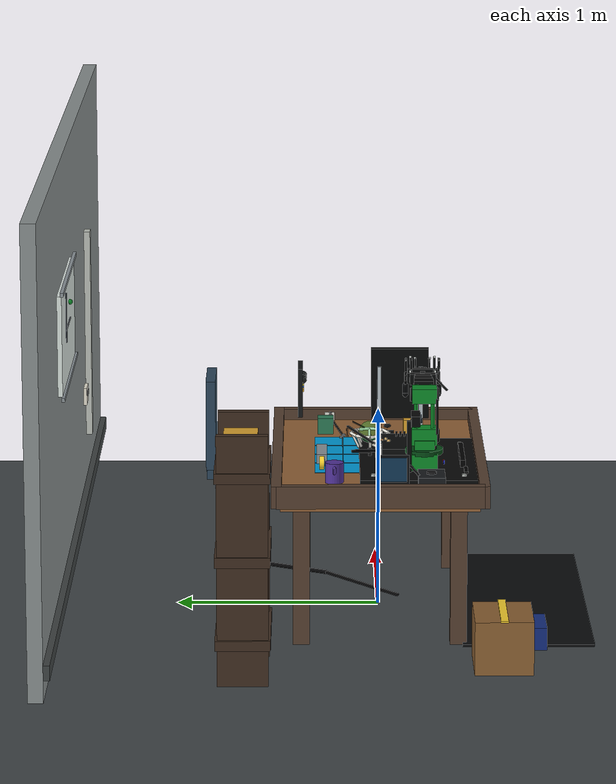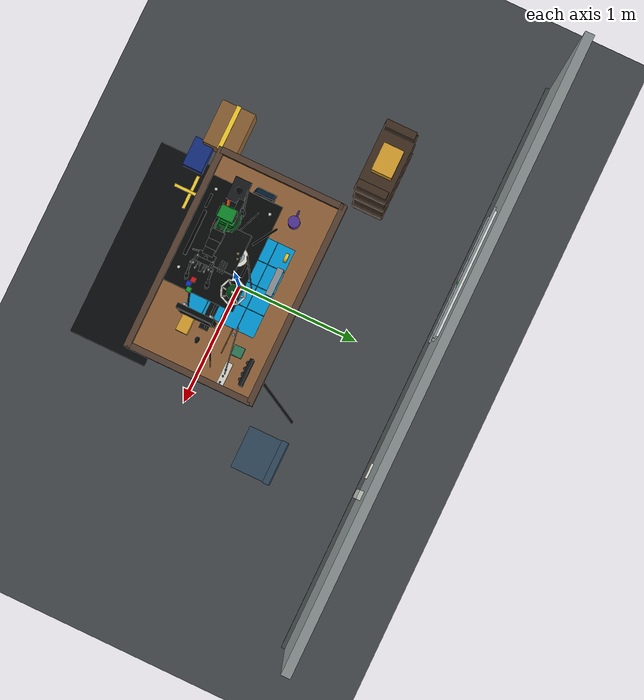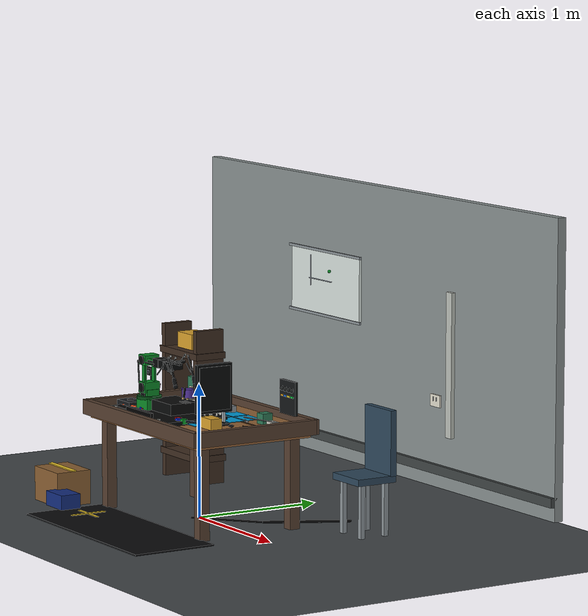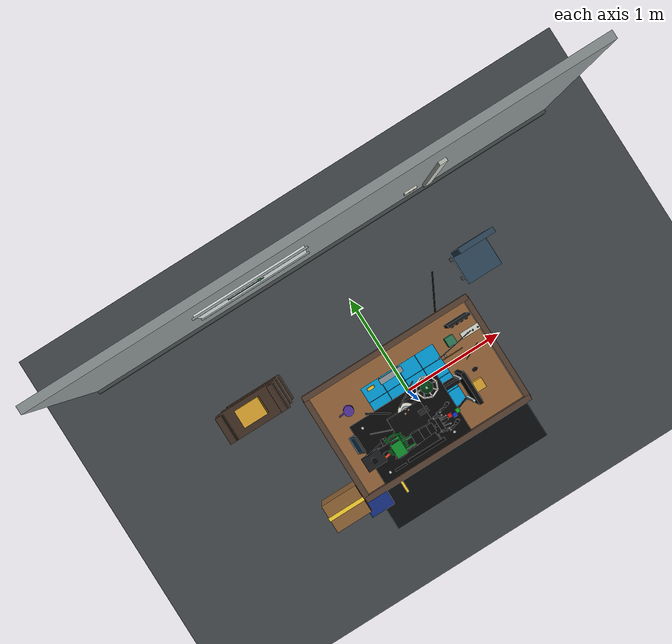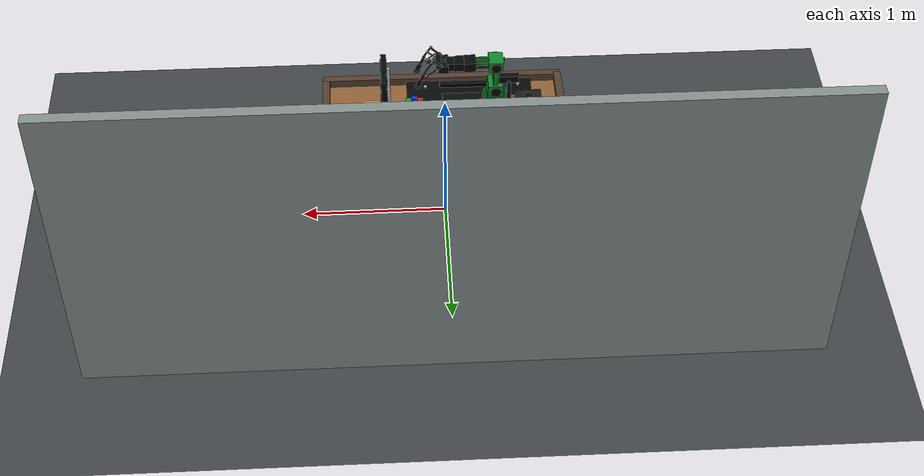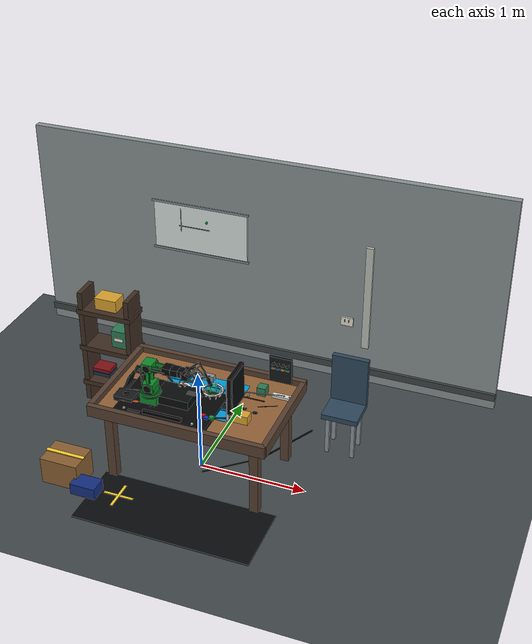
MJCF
<mujoco model="table_bowl_pick_place_jetarm">
  <compiler angle="degree" inertiafromgeom="true"/>
  <option timestep="0.002" integrator="RK4" gravity="0 0 -9.81"/>

  <visual>
    <headlight diffuse="0.6 0.6 0.6" ambient="0.25 0.25 0.25" specular="0.2 0.2 0.2"/>
    <rgba haze="0.72 0.82 0.92 1"/>
    <global azimuth="145" elevation="-25" offwidth="1400" offheight="900"/>
  </visual>

  <asset>
    <texture name="grid" type="2d" builtin="checker" width="512" height="512" rgb1="0.22 0.24 0.25" rgb2="0.3 0.32 0.33"/>
    <material name="floor_mat" texture="grid" texrepeat="5 5" reflectance="0"/>
    <material name="table_mat" rgba="0.58 0.39 0.22 1"/>
    <material name="table_edge_mat" rgba="0.34 0.25 0.19 1"/>
    <material name="metal_mat" rgba="0.55 0.58 0.6 1" specular="0.35" shininess="0.55"/>
    <material name="jetarm_black" rgba="0.025 0.028 0.028 1" specular="0.2" shininess="0.35"/>
    <material name="jetarm_green" rgba="0.05 0.55 0.16 1" specular="0.38" shininess="0.65"/>
    <material name="jetarm_dark_green" rgba="0.02 0.28 0.08 1" specular="0.22" shininess="0.45"/>
    <material name="screen_mat" rgba="0.025 0.028 0.03 1" specular="0.12" shininess="0.25"/>
    <material name="jetarm_aluminum" rgba="0.72 0.76 0.78 1" specular="0.35" shininess="0.55"/>
    <material name="screw_mat" rgba="0.82 0.84 0.82 1" specular="0.45" shininess="0.7"/>
    <material name="rubber_mat" rgba="0.04 0.045 0.05 1"/>
    <material name="cable_mat" rgba="0.015 0.015 0.018 1"/>
    <material name="matte_blue" rgba="0.08 0.2 0.32 1"/>
    <material name="status_panel_mat" rgba="0.08 0.09 0.095 1"/>
    <material name="bowl_mat" rgba="0.92 0.9 0.84 1" specular="0.25" shininess="0.45"/>
    <material name="bowl_inner_mat" rgba="0.58 0.67 0.72 1"/>
    <material name="plate_mat" rgba="0.95 0.94 0.9 1" specular="0.2" shininess="0.35"/>
    <material name="target_mat" rgba="0.15 0.52 0.32 1"/>
    <material name="box_yellow" rgba="0.86 0.64 0.18 1"/>
    <material name="box_green" rgba="0.18 0.48 0.34 1"/>
    <material name="dark_wood" rgba="0.25 0.18 0.13 1"/>
    <material name="paper_mat" rgba="0.92 0.9 0.82 1"/>
    <material name="wall_mat" rgba="0.54 0.57 0.57 1"/>
    <material name="whiteboard_mat" rgba="0.86 0.9 0.88 1" specular="0.18" shininess="0.3"/>
    <material name="tape_mat" rgba="0.98 0.82 0.18 1"/>
    <material name="orange_tool_mat" rgba="0.9 0.28 0.08 1"/>
    <material name="blue_plastic_mat" rgba="0.08 0.18 0.5 1"/>
    <material name="cardboard_mat" rgba="0.55 0.38 0.2 1"/>
    <material name="rubber_floor_mat" rgba="0.035 0.04 0.045 1"/>
  </asset>

  <worldbody>
    <geom name="floor" type="plane" size="4 4 0.05" material="floor_mat"/>
    <light name="key_light" pos="-1.8 -2.4 3.2" dir="0.5 0.65 -1" diffuse="0.95 0.95 0.9" specular="0.35 0.35 0.32"/>
    <light name="fill_light" pos="2 1.8 2.2" dir="-0.5 -0.4 -1" diffuse="0.35 0.42 0.48"/>

    <camera name="overview" pos="2.6 -3.35 2.35" xyaxes="0.80 0.60 0 -0.32 0.43 0.84" fovy="54"/>
    <camera name="front" pos="0 -2.0 1.1" xyaxes="1 0 0 0 0.37 0.93"/>

    <body name="background_wall" pos="0 1.55 0.82">
      <geom name="back_wall_panel" type="box" pos="0 0 0.48" size="2.35 0.035 1.08" material="wall_mat" contype="0" conaffinity="0"/>
      <geom name="wall_trim_low" type="box" pos="0 -0.04 -0.46" size="2.35 0.025 0.035" rgba="0.25 0.27 0.27 1" contype="0" conaffinity="0"/>
      <geom name="whiteboard" type="box" pos="-0.62 -0.045 0.74" size="0.48 0.012 0.24" material="whiteboard_mat" contype="0" conaffinity="0"/>
      <geom name="whiteboard_top_rail" type="box" pos="-0.62 -0.06 0.99" size="0.5 0.008 0.01" material="metal_mat" contype="0" conaffinity="0"/>
      <geom name="whiteboard_bottom_rail" type="box" pos="-0.62 -0.06 0.49" size="0.5 0.008 0.01" material="metal_mat" contype="0" conaffinity="0"/>
      <geom name="whiteboard_sketch_axis_x" type="box" pos="-0.68 -0.061 0.76" size="0.16 0.003 0.003" rgba="0.08 0.1 0.12 1" contype="0" conaffinity="0"/>
      <geom name="whiteboard_sketch_axis_z" type="box" pos="-0.82 -0.061 0.82" size="0.003 0.003 0.12" rgba="0.08 0.1 0.12 1" contype="0" conaffinity="0"/>
      <geom name="whiteboard_target_dot" type="sphere" pos="-0.55 -0.062 0.84" size="0.013" rgba="0.05 0.55 0.16 1" contype="0" conaffinity="0"/>
      <geom name="wall_outlet_plate" type="box" pos="0.88 -0.045 0.05" size="0.06 0.008 0.045" rgba="0.9 0.88 0.82 1" contype="0" conaffinity="0"/>
      <geom name="wall_outlet_slot_1" type="box" pos="0.86 -0.055 0.062" size="0.004 0.003 0.015" rgba="0.06 0.06 0.06 1" contype="0" conaffinity="0"/>
      <geom name="wall_outlet_slot_2" type="box" pos="0.9 -0.055 0.062" size="0.004 0.003 0.015" rgba="0.06 0.06 0.06 1" contype="0" conaffinity="0"/>
      <geom name="cable_trunk" type="box" pos="1.07 -0.05 0.34" size="0.035 0.016 0.54" rgba="0.74 0.76 0.73 1" contype="0" conaffinity="0"/>
    </body>

    <body name="floor_lab_details" pos="0 0 0">
      <geom name="anti_fatigue_mat" type="box" pos="0.06 -0.72 0.006" size="0.82 0.32 0.006" material="rubber_floor_mat" contype="0" conaffinity="0"/>
      <geom name="floor_cable_1" type="capsule" fromto="0.78 0.82 0.025 0.48 0.26 0.025" size="0.01" material="cable_mat" contype="0" conaffinity="0"/>
      <geom name="floor_cable_2" type="capsule" fromto="0.48 0.26 0.025 0.06 -0.1 0.025" size="0.008" material="cable_mat" contype="0" conaffinity="0"/>
      <geom name="floor_tape_marker_1" type="box" pos="-0.5 -0.66 0.014" size="0.14 0.012 0.003" material="tape_mat" contype="0" conaffinity="0"/>
      <geom name="floor_tape_marker_2" type="box" pos="-0.5 -0.66 0.016" euler="0 0 90" size="0.14 0.012 0.003" material="tape_mat" contype="0" conaffinity="0"/>
      <geom name="shipping_box_low" type="box" pos="-1.05 -0.58 0.13" size="0.18 0.14 0.13" material="cardboard_mat" contype="0" conaffinity="0"/>
      <geom name="shipping_box_tape" type="box" pos="-1.05 -0.58 0.265" size="0.185 0.018 0.004" material="tape_mat" contype="0" conaffinity="0"/>
      <geom name="small_parts_bin_floor" type="box" pos="-0.78 -0.72 0.08" size="0.12 0.08 0.055" material="blue_plastic_mat" contype="0" conaffinity="0"/>
    </body>

    <body name="table" pos="0 0 0">
      <geom name="tabletop" type="box" pos="0 0 0.72" size="0.78 0.48 0.04" material="table_mat" friction="0.9 0.02 0.001"/>
      <geom name="front_edge" type="box" pos="0 -0.5 0.76" size="0.82 0.025 0.055" material="table_edge_mat"/>
      <geom name="back_edge" type="box" pos="0 0.5 0.76" size="0.82 0.025 0.055" material="table_edge_mat"/>
      <geom name="left_edge" type="box" pos="-0.8 0 0.76" size="0.025 0.5 0.055" material="table_edge_mat"/>
      <geom name="right_edge" type="box" pos="0.8 0 0.76" size="0.025 0.5 0.055" material="table_edge_mat"/>
      <geom name="leg_fl" type="box" pos="-0.68 -0.38 0.36" size="0.04 0.04 0.36" material="table_edge_mat"/>
      <geom name="leg_fr" type="box" pos="0.68 -0.38 0.36" size="0.04 0.04 0.36" material="table_edge_mat"/>
      <geom name="leg_bl" type="box" pos="-0.68 0.38 0.36" size="0.04 0.04 0.36" material="table_edge_mat"/>
      <geom name="leg_br" type="box" pos="0.68 0.38 0.36" size="0.04 0.04 0.36" material="table_edge_mat"/>
      <geom name="wood_grain_1" type="box" pos="-0.35 -0.08 0.763" size="0.28 0.004 0.003" rgba="0.36 0.24 0.14 1" contype="0" conaffinity="0"/>
      <geom name="wood_grain_2" type="box" pos="0.22 0.15 0.763" size="0.34 0.004 0.003" rgba="0.36 0.24 0.14 1" contype="0" conaffinity="0"/>
      <geom name="calibration_mat" type="box" pos="0.0 0.035 0.766" size="0.36 0.28 0.002" rgba="0.0 0.62 0.86 1" contype="0" conaffinity="0"/>
      <geom name="calibration_grid_x1" type="box" pos="-0.18 0.035 0.769" size="0.002 0.28 0.0015" rgba="0.16 0.32 0.38 1" contype="0" conaffinity="0"/>
      <geom name="calibration_grid_x2" type="box" pos="0 0.035 0.769" size="0.002 0.28 0.0015" rgba="0.16 0.32 0.38 1" contype="0" conaffinity="0"/>
      <geom name="calibration_grid_x3" type="box" pos="0.18 0.035 0.769" size="0.002 0.28 0.0015" rgba="0.16 0.32 0.38 1" contype="0" conaffinity="0"/>
      <geom name="calibration_grid_y1" type="box" pos="0 -0.105 0.77" size="0.36 0.002 0.0015" rgba="0.16 0.32 0.38 1" contype="0" conaffinity="0"/>
      <geom name="calibration_grid_y2" type="box" pos="0 0.035 0.77" size="0.36 0.002 0.0015" rgba="0.16 0.32 0.38 1" contype="0" conaffinity="0"/>
      <geom name="calibration_grid_y3" type="box" pos="0 0.175 0.77" size="0.36 0.002 0.0015" rgba="0.16 0.32 0.38 1" contype="0" conaffinity="0"/>
      <geom name="table_scuff_1" type="capsule" fromto="-0.67 -0.2 0.769 -0.51 -0.16 0.769" size="0.003" rgba="0.22 0.16 0.11 1" contype="0" conaffinity="0"/>
      <geom name="table_scuff_2" type="capsule" fromto="0.54 0.05 0.769 0.69 0.12 0.769" size="0.003" rgba="0.22 0.16 0.11 1" contype="0" conaffinity="0"/>
    </body>

    <body name="plate" pos="0.12 0.04 0.765">
      <geom name="target_bowl_collision" type="cylinder" pos="0 0 0.034" size="0.072 0.034" rgba="0.95 0.94 0.9 0" contype="1" conaffinity="1"/>
      <geom name="target_bowl_foot" type="cylinder" pos="0 0 0.004" size="0.044 0.004" rgba="0.78 0.77 0.72 1" contype="0" conaffinity="0"/>
      <geom name="target_bowl_side_0" type="capsule" fromto="0.055 0 0.012 0.088 0 0.079" size="0.006" material="plate_mat" contype="0" conaffinity="0"/>
      <geom name="target_bowl_side_1" type="capsule" fromto="0.039 0.039 0.012 0.062 0.062 0.079" size="0.006" material="plate_mat" contype="0" conaffinity="0"/>
      <geom name="target_bowl_side_2" type="capsule" fromto="0 0.055 0.012 0 0.088 0.079" size="0.006" material="plate_mat" contype="0" conaffinity="0"/>
      <geom name="target_bowl_side_3" type="capsule" fromto="-0.039 0.039 0.012 -0.062 0.062 0.079" size="0.006" material="plate_mat" contype="0" conaffinity="0"/>
      <geom name="target_bowl_side_4" type="capsule" fromto="-0.055 0 0.012 -0.088 0 0.079" size="0.006" material="plate_mat" contype="0" conaffinity="0"/>
      <geom name="target_bowl_side_5" type="capsule" fromto="-0.039 -0.039 0.012 -0.062 -0.062 0.079" size="0.006" material="plate_mat" contype="0" conaffinity="0"/>
      <geom name="target_bowl_side_6" type="capsule" fromto="0 -0.055 0.012 0 -0.088 0.079" size="0.006" material="plate_mat" contype="0" conaffinity="0"/>
      <geom name="target_bowl_side_7" type="capsule" fromto="0.039 -0.039 0.012 0.062 -0.062 0.079" size="0.006" material="plate_mat" contype="0" conaffinity="0"/>
      <geom name="target_bowl_rim_0" type="capsule" fromto="0.095 0 0.084 0.067 0.067 0.084" size="0.007" material="plate_mat" contype="0" conaffinity="0"/>
      <geom name="target_bowl_rim_1" type="capsule" fromto="0.067 0.067 0.084 0 0.095 0.084" size="0.007" material="plate_mat" contype="0" conaffinity="0"/>
      <geom name="target_bowl_rim_2" type="capsule" fromto="0 0.095 0.084 -0.067 0.067 0.084" size="0.007" material="plate_mat" contype="0" conaffinity="0"/>
      <geom name="target_bowl_rim_3" type="capsule" fromto="-0.067 0.067 0.084 -0.095 0 0.084" size="0.007" material="plate_mat" contype="0" conaffinity="0"/>
      <geom name="target_bowl_rim_4" type="capsule" fromto="-0.095 0 0.084 -0.067 -0.067 0.084" size="0.007" material="plate_mat" contype="0" conaffinity="0"/>
      <geom name="target_bowl_rim_5" type="capsule" fromto="-0.067 -0.067 0.084 0 -0.095 0.084" size="0.007" material="plate_mat" contype="0" conaffinity="0"/>
      <geom name="target_bowl_rim_6" type="capsule" fromto="0 -0.095 0.084 0.067 -0.067 0.084" size="0.007" material="plate_mat" contype="0" conaffinity="0"/>
      <geom name="target_bowl_rim_7" type="capsule" fromto="0.067 -0.067 0.084 0.095 0 0.084" size="0.007" material="plate_mat" contype="0" conaffinity="0"/>
      <geom name="target_marker" type="cylinder" pos="0 0 0.092" size="0.035 0.0015" rgba="0.15 0.52 0.32 0" contype="0" conaffinity="0"/>
      <site name="success_target" pos="0 0 0.09" size="0.055" rgba="0.0 0.8 0.2 0.28"/>
    </body>

    <body name="bowl" pos="-0.13 -0.04 0.79">
      <freejoint name="bowl_free"/>
      <geom name="bowl_collision" type="cylinder" pos="0 0 0.032" size="0.058 0.032" material="bowl_mat" mass="0.045" friction="0.95 0.02 0.001"/>
      <geom name="bowl_rim" type="cylinder" pos="0 0 0.068" size="0.074 0.007" material="bowl_mat" contype="0" conaffinity="0"/>
      <geom name="bowl_inner" type="cylinder" pos="0 0 0.075" size="0.046 0.003" material="bowl_inner_mat" contype="0" conaffinity="0"/>
      <geom name="bowl_contents_1" type="sphere" pos="-0.02 -0.01 0.084" size="0.009" rgba="0.78 0.62 0.36 1" contype="0" conaffinity="0"/>
      <geom name="bowl_contents_2" type="sphere" pos="0.018 0.004 0.085" size="0.008" rgba="0.82 0.7 0.46 1" contype="0" conaffinity="0"/>
      <geom name="bowl_contents_3" type="sphere" pos="0.0 0.022 0.083" size="0.007" rgba="0.68 0.5 0.3 1" contype="0" conaffinity="0"/>
    </body>

    <body name="jetarm_reference_mount" pos="-0.18 -0.19 0.772">
      <geom name="black_mount_deck" type="box" pos="0 0 0" size="0.43 0.285 0.018" material="jetarm_black" contype="0" conaffinity="0"/>
      <geom name="electronics_box" type="box" pos="0.03 0.06 0.055" size="0.16 0.115 0.045" rgba="0.035 0.038 0.04 1" contype="0" conaffinity="0"/>
      <geom name="front_open_slot" type="box" pos="0.02 -0.22 0.035" size="0.18 0.012 0.018" rgba="0.0 0.0 0.0 1" contype="0" conaffinity="0"/>
      <geom name="electronics_vent_1" type="box" pos="0.17 0.06 0.104" size="0.045 0.004 0.003" rgba="0.0 0.0 0.0 1" contype="0" conaffinity="0"/>
      <geom name="electronics_vent_2" type="box" pos="0.17 0.08 0.104" size="0.045 0.004 0.003" rgba="0.0 0.0 0.0 1" contype="0" conaffinity="0"/>
      <geom name="electronics_vent_3" type="box" pos="0.17 0.10 0.104" size="0.045 0.004 0.003" rgba="0.0 0.0 0.0 1" contype="0" conaffinity="0"/>
      <geom name="blue_status_led" type="cylinder" pos="-0.13 -0.128 0.034" euler="90 0 0" size="0.009 0.003" rgba="0.05 0.16 0.95 1" contype="0" conaffinity="0"/>
      <geom name="red_status_led" type="cylinder" pos="-0.1 -0.128 0.034" euler="90 0 0" size="0.006 0.003" rgba="0.95 0.04 0.04 1" contype="0" conaffinity="0"/>
      <geom name="screen_left_post" type="box" pos="0.55 -0.03 0.18" size="0.01 0.01 0.18" material="jetarm_aluminum" contype="0" conaffinity="0"/>
      <geom name="screen_right_post" type="box" pos="0.55 0.18 0.18" size="0.01 0.01 0.18" material="jetarm_aluminum" contype="0" conaffinity="0"/>
      <geom name="display_back" type="box" pos="0.58 0.075 0.27" euler="0 0 0" size="0.018 0.145 0.18" material="screen_mat" contype="0" conaffinity="0"/>
      <geom name="display_glass" type="box" pos="0.602 0.075 0.27" size="0.003 0.128 0.16" rgba="0.03 0.035 0.038 1" contype="0" conaffinity="0"/>
      <geom name="suction_foot_fl" type="cylinder" pos="-0.36 -0.23 -0.02" size="0.045 0.006" rgba="0.45 0.48 0.48 0.75" contype="0" conaffinity="0"/>
      <geom name="suction_foot_fr" type="cylinder" pos="0.32 -0.23 -0.02" size="0.045 0.006" rgba="0.45 0.48 0.48 0.75" contype="0" conaffinity="0"/>
      <geom name="suction_foot_bl" type="cylinder" pos="-0.36 0.23 -0.02" size="0.045 0.006" rgba="0.45 0.48 0.48 0.75" contype="0" conaffinity="0"/>
      <geom name="suction_foot_br" type="cylinder" pos="0.32 0.23 -0.02" size="0.045 0.006" rgba="0.45 0.48 0.48 0.75" contype="0" conaffinity="0"/>
      <geom name="mount_cutout_front" type="box" pos="-0.24 -0.232 0.023" size="0.055 0.009 0.006" rgba="0.0 0.0 0.0 1" contype="0" conaffinity="0"/>
      <geom name="mount_cutout_rear" type="box" pos="0.12 0.232 0.023" size="0.055 0.009 0.006" rgba="0.0 0.0 0.0 1" contype="0" conaffinity="0"/>
      <geom name="mount_screw_1" type="cylinder" pos="-0.34 -0.22 0.023" size="0.011 0.005" material="screw_mat" contype="0" conaffinity="0"/>
      <geom name="mount_screw_2" type="cylinder" pos="0.3 -0.22 0.023" size="0.011 0.005" material="screw_mat" contype="0" conaffinity="0"/>
      <geom name="mount_screw_3" type="cylinder" pos="-0.34 0.22 0.023" size="0.011 0.005" material="screw_mat" contype="0" conaffinity="0"/>
      <geom name="mount_screw_4" type="cylinder" pos="0.3 0.22 0.023" size="0.011 0.005" material="screw_mat" contype="0" conaffinity="0"/>
      <geom name="rear_cable_bundle_1" type="capsule" fromto="-0.08 0.21 0.08 -0.25 0.32 0.12" size="0.008" material="cable_mat" contype="0" conaffinity="0"/>
      <geom name="rear_cable_bundle_2" type="capsule" fromto="0.02 0.21 0.09 0.22 0.34 0.13" size="0.006" material="cable_mat" contype="0" conaffinity="0"/>
    </body>

    <body name="hiwonder_jetarm" pos="-0.35 -0.22 0.765">
      <geom name="jetarm_base_plate" type="box" pos="0 0 0.012" size="0.14 0.11 0.012" material="jetarm_black"/>
      <geom name="jetarm_base_servo" type="box" pos="0 0 0.062" size="0.08 0.065 0.047" material="jetarm_green" contype="0" conaffinity="0"/>
      <geom name="base_rotation_disc" type="cylinder" pos="0 0 0.112" size="0.092 0.012" material="jetarm_dark_green" contype="0" conaffinity="0"/>
      <geom name="depth_camera_stand" type="box" pos="-0.085 0.075 0.15" size="0.012 0.012 0.13" material="jetarm_black" contype="0" conaffinity="0"/>
      <geom name="depth_camera" type="box" pos="-0.085 0.045 0.29" size="0.065 0.022 0.026" material="jetarm_black" contype="0" conaffinity="0"/>
      <geom name="depth_lens_left" type="cylinder" pos="-0.12 0.02 0.29" euler="90 0 0" size="0.012 0.004" rgba="0.02 0.05 0.08 1" contype="0" conaffinity="0"/>
      <geom name="depth_lens_right" type="cylinder" pos="-0.05 0.02 0.29" euler="90 0 0" size="0.012 0.004" rgba="0.02 0.05 0.08 1" contype="0" conaffinity="0"/>

      <body name="jetarm_joint_1" pos="0 0 0.112">
        <joint name="j1" type="hinge" axis="0 0 1" range="-150 150" limited="true" damping="16" armature="0.025"/>
        <geom name="j1_servo_case" type="box" pos="0 0 0.025" size="0.057 0.05 0.035" material="jetarm_green" contype="0" conaffinity="0"/>
        <geom name="j1_black_cap" type="cylinder" pos="0 -0.052 0.025" euler="90 0 0" size="0.032 0.006" material="jetarm_black" contype="0" conaffinity="0"/>
        <geom name="j1_cap_screw_a" type="cylinder" pos="0.02 -0.059 0.043" euler="90 0 0" size="0.005 0.004" material="screw_mat" contype="0" conaffinity="0"/>
        <geom name="j1_cap_screw_b" type="cylinder" pos="-0.02 -0.059 0.007" euler="90 0 0" size="0.005 0.004" material="screw_mat" contype="0" conaffinity="0"/>

        <body name="jetarm_joint_2" pos="0 0 0.075">
          <joint name="j2" type="hinge" axis="0 1 0" range="-105 105" limited="true" damping="18" armature="0.025"/>
          <geom name="j2_servo_case" type="box" pos="0 0 0" size="0.049 0.062 0.04" material="jetarm_green" contype="0" conaffinity="0"/>
          <geom name="j2_black_cap_l" type="cylinder" pos="0 -0.066 0" euler="90 0 0" size="0.035 0.006" material="jetarm_black" contype="0" conaffinity="0"/>
          <geom name="j2_black_cap_r" type="cylinder" pos="0 0.066 0" euler="90 0 0" size="0.035 0.006" material="jetarm_black" contype="0" conaffinity="0"/>
          <geom name="shoulder_bracket_l" type="box" pos="0 -0.045 0.08" size="0.014 0.006 0.095" material="jetarm_green" contype="0" conaffinity="0"/>
          <geom name="shoulder_bracket_r" type="box" pos="0 0.045 0.08" size="0.014 0.006 0.095" material="jetarm_green" contype="0" conaffinity="0"/>
          <geom name="upper_link_l" type="box" pos="0 -0.036 0.12" size="0.018 0.005 0.105" material="jetarm_green" contype="0" conaffinity="0"/>
          <geom name="upper_link_r" type="box" pos="0 0.036 0.12" size="0.018 0.005 0.105" material="jetarm_green" contype="0" conaffinity="0"/>
          <geom name="upper_link_slot_l" type="box" pos="0.001 -0.042 0.13" size="0.006 0.003 0.042" material="jetarm_black" contype="0" conaffinity="0"/>
          <geom name="upper_link_slot_r" type="box" pos="0.001 0.042 0.13" size="0.006 0.003 0.042" material="jetarm_black" contype="0" conaffinity="0"/>
          <geom name="upper_wire_loop" type="capsule" fromto="-0.045 -0.06 0.02 -0.06 -0.06 0.19" size="0.006" material="jetarm_black" contype="0" conaffinity="0"/>

          <body name="jetarm_joint_3" pos="0 0 0.205">
            <joint name="j3" type="hinge" axis="0 1 0" range="-120 120" limited="true" damping="16" armature="0.022"/>
            <geom name="j3_servo_case" type="box" pos="0 0 0" size="0.048 0.06 0.037" material="jetarm_green" contype="0" conaffinity="0"/>
            <geom name="j3_black_cap_l" type="cylinder" pos="0 -0.064 0" euler="90 0 0" size="0.033 0.006" material="jetarm_black" contype="0" conaffinity="0"/>
            <geom name="j3_black_cap_r" type="cylinder" pos="0 0.064 0" euler="90 0 0" size="0.033 0.006" material="jetarm_black" contype="0" conaffinity="0"/>
            <geom name="forearm_link_l" type="box" pos="0.088 -0.034 0" size="0.095 0.005 0.018" material="jetarm_green" contype="0" conaffinity="0"/>
            <geom name="forearm_link_r" type="box" pos="0.088 0.034 0" size="0.095 0.005 0.018" material="jetarm_green" contype="0" conaffinity="0"/>
            <geom name="forearm_slot_l" type="box" pos="0.092 -0.04 0" size="0.04 0.003 0.006" material="jetarm_black" contype="0" conaffinity="0"/>
            <geom name="forearm_slot_r" type="box" pos="0.092 0.04 0" size="0.04 0.003 0.006" material="jetarm_black" contype="0" conaffinity="0"/>
            <geom name="servo_wire" type="capsule" fromto="-0.02 -0.055 -0.015 0.16 -0.055 -0.01" size="0.006" material="jetarm_black" contype="0" conaffinity="0"/>

            <body name="jetarm_joint_4" pos="0.175 0 0">
              <joint name="j4" type="hinge" axis="1 0 0" range="-150 150" limited="true" damping="10" armature="0.015"/>
              <geom name="j4_servo_case" type="box" pos="0 0 0" size="0.038 0.048 0.032" material="jetarm_black" contype="0" conaffinity="0"/>
              <geom name="wrist_pitch_link" type="box" pos="0.035 0 0" size="0.045 0.018 0.012" material="jetarm_black" contype="0" conaffinity="0"/>

              <body name="jetarm_joint_5" pos="0.07 0 0">
                <joint name="j5" type="hinge" axis="0 1 0" range="-105 105" limited="true" damping="10" armature="0.015"/>
                <geom name="j5_servo_case" type="box" pos="0 0 0" size="0.034 0.044 0.03" material="jetarm_black" contype="0" conaffinity="0"/>
                <geom name="wrist_roll_link" type="box" pos="0.028 0 0" size="0.038 0.015 0.01" material="jetarm_black" contype="0" conaffinity="0"/>

                <body name="jetarm_joint_6" pos="0.055 0 0">
                  <joint name="j6" type="hinge" axis="1 0 0" range="-180 180" limited="true" damping="8" armature="0.012"/>
                  <geom name="j6_servo_case" type="box" pos="0 0 0" size="0.032 0.04 0.028" material="jetarm_black" contype="0" conaffinity="0"/>

                  <body name="gripper_palm" pos="0.05 0 0">
                    <geom name="gripper_palm_geom" type="box" pos="0.002 0 0" size="0.034 0.064 0.026" material="jetarm_black" contype="0" conaffinity="0"/>
                    <geom name="gripper_face_plate" type="box" pos="0.034 0 0.032" size="0.018 0.074 0.009" material="jetarm_black" contype="0" conaffinity="0"/>
                    <geom name="gripper_neck_ring" type="cylinder" pos="-0.032 0 -0.022" euler="0 90 0" size="0.034 0.008" material="jetarm_black" contype="0" conaffinity="0"/>
                    <geom name="gripper_cable_loop" type="capsule" fromto="-0.025 -0.06 0.01 -0.02 -0.12 -0.055" size="0.005" material="jetarm_black" contype="0" conaffinity="0"/>
                    <site name="gripper_site" pos="0.167 0 -0.092" size="0.001" rgba="0.05 0.9 0.2 0"/>
                    <geom name="gripper_crossbar" type="box" pos="0.052 0 0.026" size="0.06 0.011 0.007" material="jetarm_black" contype="0" conaffinity="0"/>
                    <geom name="gripper_base_link_l" type="capsule" fromto="0.012 -0.058 0.027 0.078 -0.058 0.088" size="0.006" material="jetarm_black" contype="0" conaffinity="0"/>
                    <geom name="gripper_base_link_r" type="capsule" fromto="0.012 0.058 0.027 0.078 0.058 0.088" size="0.006" material="jetarm_black" contype="0" conaffinity="0"/>
                    <geom name="gripper_inner_link_l" type="capsule" fromto="0.042 -0.034 0.024 0.105 -0.034 0.078" size="0.0045" material="jetarm_black" contype="0" conaffinity="0"/>
                    <geom name="gripper_inner_link_r" type="capsule" fromto="0.042 0.034 0.024 0.105 0.034 0.078" size="0.0045" material="jetarm_black" contype="0" conaffinity="0"/>
                    <geom name="gripper_center_yoke_l" type="capsule" fromto="0.036 -0.016 0.035 0.074 -0.016 0.035" size="0.005" material="jetarm_black" contype="0" conaffinity="0"/>
                    <geom name="gripper_center_yoke_r" type="capsule" fromto="0.036 0.016 0.035 0.074 0.016 0.035" size="0.005" material="jetarm_black" contype="0" conaffinity="0"/>
                    <geom name="gripper_pivot_l0" type="cylinder" pos="0.014 -0.061 0.03" euler="90 0 0" size="0.008 0.004" material="screw_mat" contype="0" conaffinity="0"/>
                    <geom name="gripper_pivot_l1" type="cylinder" pos="0.078 -0.061 0.088" euler="90 0 0" size="0.008 0.004" material="screw_mat" contype="0" conaffinity="0"/>
                    <geom name="gripper_pivot_l2" type="cylinder" pos="0.042 -0.037 0.024" euler="90 0 0" size="0.007 0.004" material="screw_mat" contype="0" conaffinity="0"/>
                    <geom name="gripper_pivot_l3" type="cylinder" pos="0.106 -0.037 0.078" euler="90 0 0" size="0.007 0.004" material="screw_mat" contype="0" conaffinity="0"/>
                    <geom name="gripper_pivot_r0" type="cylinder" pos="0.014 0.061 0.03" euler="90 0 0" size="0.008 0.004" material="screw_mat" contype="0" conaffinity="0"/>
                    <geom name="gripper_pivot_r1" type="cylinder" pos="0.078 0.061 0.088" euler="90 0 0" size="0.008 0.004" material="screw_mat" contype="0" conaffinity="0"/>
                    <geom name="gripper_pivot_r2" type="cylinder" pos="0.042 0.037 0.024" euler="90 0 0" size="0.007 0.004" material="screw_mat" contype="0" conaffinity="0"/>
                    <geom name="gripper_pivot_r3" type="cylinder" pos="0.106 0.037 0.078" euler="90 0 0" size="0.007 0.004" material="screw_mat" contype="0" conaffinity="0"/>
                    <geom name="gripper_span_marker" type="box" pos="0.128 0 -0.046" size="0.004 0.058 0.003" rgba="0.05 0.9 0.2 0" contype="0" conaffinity="0"/>
                    <body name="left_finger" pos="0.086 -0.082 0">
                      <joint name="left_finger_slide" type="slide" axis="0 1 0" range="0 0.035" limited="true" damping="5"/>
                      <geom name="left_finger_upper_link" type="capsule" fromto="-0.008 0 0.08 0.048 0 -0.008" size="0.006" material="jetarm_black" contype="0" conaffinity="0"/>
                      <geom name="left_finger_drive_link" type="capsule" fromto="-0.03 0 0.018 0.032 0 -0.036" size="0.005" material="jetarm_black" contype="0" conaffinity="0"/>
                      <geom name="left_finger_stem" type="capsule" fromto="0.04 0 -0.006 0.075 0 -0.076" size="0.008" material="jetarm_black" contype="0" conaffinity="0"/>
                      <geom name="left_finger_pad" type="capsule" fromto="0.072 0 -0.072 0.089 0 -0.112" size="0.015" material="rubber_mat" friction="1.2 0.04 0.001"/>
                      <geom name="left_finger_tip" type="ellipsoid" pos="0.091 0 -0.119" size="0.021 0.015 0.018" material="rubber_mat" friction="1.2 0.04 0.001"/>
                      <geom name="left_finger_pivot_top" type="cylinder" pos="-0.006 0 0.078" euler="90 0 0" size="0.008 0.004" material="screw_mat" contype="0" conaffinity="0"/>
                      <geom name="left_finger_pivot_mid" type="cylinder" pos="0.034 0 -0.032" euler="90 0 0" size="0.008 0.004" material="screw_mat" contype="0" conaffinity="0"/>
                      <site name="left_grip_contact" pos="0.078 0 -0.046" size="0.001" rgba="0.95 0.1 0.1 0"/>
                    </body>
                    <body name="right_finger" pos="0.086 0.082 0">
                      <joint name="right_finger_slide" type="slide" axis="0 -1 0" range="0 0.035" limited="true" damping="5"/>
                      <geom name="right_finger_upper_link" type="capsule" fromto="-0.008 0 0.08 0.048 0 -0.008" size="0.006" material="jetarm_black" contype="0" conaffinity="0"/>
                      <geom name="right_finger_drive_link" type="capsule" fromto="-0.03 0 0.018 0.032 0 -0.036" size="0.005" material="jetarm_black" contype="0" conaffinity="0"/>
                      <geom name="right_finger_stem" type="capsule" fromto="0.04 0 -0.006 0.075 0 -0.076" size="0.008" material="jetarm_black" contype="0" conaffinity="0"/>
                      <geom name="right_finger_pad" type="capsule" fromto="0.072 0 -0.072 0.089 0 -0.112" size="0.015" material="rubber_mat" friction="1.2 0.04 0.001"/>
                      <geom name="right_finger_tip" type="ellipsoid" pos="0.091 0 -0.119" size="0.021 0.015 0.018" material="rubber_mat" friction="1.2 0.04 0.001"/>
                      <geom name="right_finger_pivot_top" type="cylinder" pos="-0.006 0 0.078" euler="90 0 0" size="0.008 0.004" material="screw_mat" contype="0" conaffinity="0"/>
                      <geom name="right_finger_pivot_mid" type="cylinder" pos="0.034 0 -0.032" euler="90 0 0" size="0.008 0.004" material="screw_mat" contype="0" conaffinity="0"/>
                      <site name="right_grip_contact" pos="0.078 0 -0.046" size="0.001" rgba="0.95 0.1 0.1 0"/>
                    </body>
                  </body>
                </body>
              </body>
            </body>
          </body>
        </body>
      </body>
    </body>

    <body name="jetson_box" pos="-0.58 -0.25 0.775">
      <geom name="jetson_case" type="box" pos="0 0 0.022" size="0.09 0.065 0.022" rgba="0.09 0.1 0.11 1" contype="0" conaffinity="0"/>
      <geom name="jetson_fan" type="cylinder" pos="0 0 0.048" size="0.025 0.004" rgba="0.02 0.02 0.025 1" contype="0" conaffinity="0"/>
      <geom name="usb_cable" type="capsule" fromto="-0.03 0.06 0.04 0.18 0.11 0.05" size="0.006" material="jetarm_black" contype="0" conaffinity="0"/>
      <geom name="ethernet_jack" type="box" pos="0.065 -0.045 0.027" size="0.014 0.006 0.01" rgba="0.78 0.68 0.28 1" contype="0" conaffinity="0"/>
      <geom name="power_button" type="cylinder" pos="-0.067 -0.048 0.026" euler="90 0 0" size="0.009 0.004" rgba="0.0 0.38 0.12 1" contype="0" conaffinity="0"/>
    </body>

    <body name="background_shelf" pos="-1.2 0.65 0">
      <geom name="shelf_left" type="box" pos="-0.24 0 0.62" size="0.025 0.12 0.6" material="dark_wood"/>
      <geom name="shelf_right" type="box" pos="0.24 0 0.62" size="0.025 0.12 0.6" material="dark_wood"/>
      <geom name="shelf_bottom" type="box" pos="0 0 0.22" size="0.28 0.13 0.025" material="dark_wood"/>
      <geom name="shelf_mid" type="box" pos="0 0 0.62" size="0.28 0.13 0.025" material="dark_wood"/>
      <geom name="shelf_top" type="box" pos="0 0 1.02" size="0.28 0.13 0.025" material="dark_wood"/>
      <geom name="green_bin" type="box" pos="0.11 0.015 0.75" size="0.075 0.08 0.09" material="box_green"/>
      <geom name="yellow_bin" type="box" pos="0 0.01 1.11" size="0.11 0.08 0.06" material="box_yellow"/>
      <geom name="binder_stack_1" type="box" pos="-0.11 0.01 0.30" size="0.09 0.075 0.018" material="matte_blue"/>
      <geom name="binder_stack_2" type="box" pos="-0.11 0.01 0.342" size="0.09 0.075 0.018" rgba="0.5 0.07 0.08 1"/>
      <geom name="storage_bin_label" type="box" pos="0.11 -0.067 0.75" size="0.045 0.003 0.018" material="paper_mat" contype="0" conaffinity="0"/>
    </body>

    <body name="background_chair" pos="1.12 0.72 0">
      <geom name="chair_seat" type="box" pos="0 0 0.42" size="0.17 0.16 0.025" rgba="0.18 0.28 0.36 1"/>
      <geom name="chair_back" type="box" pos="0 0.14 0.68" size="0.17 0.025 0.24" rgba="0.18 0.28 0.36 1"/>
      <geom name="chair_leg_1" type="box" pos="-0.12 -0.1 0.21" size="0.018 0.018 0.21" material="metal_mat"/>
      <geom name="chair_leg_2" type="box" pos="0.12 -0.1 0.21" size="0.018 0.018 0.21" material="metal_mat"/>
      <geom name="chair_leg_3" type="box" pos="-0.12 0.1 0.21" size="0.018 0.018 0.21" material="metal_mat"/>
      <geom name="chair_leg_4" type="box" pos="0.12 0.1 0.21" size="0.018 0.018 0.21" material="metal_mat"/>
    </body>

    <body name="tabletop_background_objects" pos="0 0 0">
      <geom name="coffee_mug" type="cylinder" pos="-0.54 0.22 0.815" size="0.045 0.05" rgba="0.32 0.2 0.6 1"/>
      <geom name="coffee_mug_handle" type="capsule" fromto="-0.585 0.22 0.82 -0.625 0.22 0.855" size="0.008" rgba="0.32 0.2 0.6 1" contype="0" conaffinity="0"/>
      <geom name="small_box" type="box" pos="0.48 -0.18 0.805" size="0.07 0.045 0.04" material="box_yellow"/>
      <geom name="tool_block" type="box" pos="-0.08 0.28 0.79" size="0.11 0.025 0.025" material="metal_mat"/>
      <geom name="sensor_cube" type="box" pos="0.5 0.26 0.8" size="0.04 0.04 0.04" material="box_green"/>
      <geom name="paper_note" type="box" pos="-0.41 -0.32 0.766" size="0.11 0.055 0.002" material="paper_mat" contype="0" conaffinity="0"/>
      <geom name="pen_body" type="capsule" fromto="0.25 -0.26 0.79 0.42 -0.2 0.79" size="0.008" rgba="0.02 0.04 0.08 1" contype="0" conaffinity="0"/>
      <geom name="small_screw_1" type="cylinder" pos="0.35 0.18 0.769" size="0.011 0.005" material="metal_mat" contype="0" conaffinity="0"/>
      <geom name="small_screw_2" type="cylinder" pos="0.4 0.17 0.769" size="0.01 0.005" material="metal_mat" contype="0" conaffinity="0"/>
      <geom name="laptop_base" type="box" pos="-0.55 -0.06 0.78" size="0.12 0.08 0.006" rgba="0.08 0.085 0.09 1" contype="0" conaffinity="0"/>
      <geom name="laptop_screen" type="box" pos="-0.63 -0.06 0.85" euler="0 22 0" size="0.006 0.08 0.07" rgba="0.02 0.025 0.03 1" contype="0" conaffinity="0"/>
      <geom name="laptop_screen_glow" type="box" pos="-0.637 -0.06 0.85" euler="0 22 0" size="0.002 0.07 0.058" rgba="0.05 0.18 0.28 1" contype="0" conaffinity="0"/>
      <geom name="keyboard" type="box" pos="0.34 -0.05 0.775" size="0.12 0.035 0.006" rgba="0.035 0.038 0.04 1" contype="0" conaffinity="0"/>
      <geom name="keyboard_key_row_1" type="box" pos="0.34 -0.05 0.783" size="0.108 0.003 0.002" rgba="0.18 0.19 0.19 1" contype="0" conaffinity="0"/>
      <geom name="keyboard_key_row_2" type="box" pos="0.34 -0.034 0.783" size="0.108 0.003 0.002" rgba="0.18 0.19 0.19 1" contype="0" conaffinity="0"/>
      <geom name="mouse" type="ellipsoid" pos="0.55 -0.055 0.782" size="0.025 0.018 0.009" rgba="0.05 0.055 0.06 1" contype="0" conaffinity="0"/>
      <geom name="tape_roll_outer" type="cylinder" pos="-0.28 0.28 0.794" euler="90 0 0" size="0.035 0.012" material="tape_mat" contype="0" conaffinity="0"/>
      <geom name="tape_roll_core" type="cylinder" pos="-0.28 0.28 0.795" euler="90 0 0" size="0.018 0.013" rgba="0.9 0.88 0.76 1" contype="0" conaffinity="0"/>
      <geom name="orange_screwdriver_handle" type="capsule" fromto="-0.58 -0.31 0.787 -0.45 -0.28 0.787" size="0.011" material="orange_tool_mat" contype="0" conaffinity="0"/>
      <geom name="screwdriver_shaft" type="capsule" fromto="-0.45 -0.28 0.787 -0.34 -0.255 0.787" size="0.004" material="metal_mat" contype="0" conaffinity="0"/>
      <geom name="calibration_cube_red" type="box" pos="0.16 -0.27 0.787" size="0.018 0.018 0.018" rgba="0.85 0.06 0.05 1" contype="0" conaffinity="0"/>
      <geom name="calibration_cube_blue" type="box" pos="0.2 -0.29 0.787" size="0.018 0.018 0.018" rgba="0.06 0.18 0.85 1" contype="0" conaffinity="0"/>
      <geom name="calibration_cube_green" type="box" pos="0.24 -0.27 0.787" size="0.018 0.018 0.018" rgba="0.05 0.65 0.18 1" contype="0" conaffinity="0"/>
    </body>

    <body name="bench_side_equipment" pos="0 0 0">
      <geom name="power_strip" type="box" pos="0.71 0.24 0.787" size="0.11 0.026 0.012" rgba="0.86 0.86 0.82 1" contype="0" conaffinity="0"/>
      <geom name="power_strip_socket_1" type="cylinder" pos="0.66 0.235 0.801" size="0.008 0.002" rgba="0.05 0.05 0.05 1" contype="0" conaffinity="0"/>
      <geom name="power_strip_socket_2" type="cylinder" pos="0.71 0.235 0.801" size="0.008 0.002" rgba="0.05 0.05 0.05 1" contype="0" conaffinity="0"/>
      <geom name="power_strip_socket_3" type="cylinder" pos="0.76 0.235 0.801" size="0.008 0.002" rgba="0.05 0.05 0.05 1" contype="0" conaffinity="0"/>
      <geom name="bench_cable_to_strip" type="capsule" fromto="0.69 0.24 0.798 0.34 0.18 0.792" size="0.005" material="cable_mat" contype="0" conaffinity="0"/>
      <geom name="usb_cable_to_laptop" type="capsule" fromto="-0.49 -0.05 0.79 -0.2 -0.16 0.79" size="0.005" material="cable_mat" contype="0" conaffinity="0"/>
    </body>

    <body name="task_status_panel" pos="0.62 0.39 0.89">
      <geom name="status_panel_back" type="box" pos="0 0 0.07" size="0.105 0.012 0.125" material="status_panel_mat" contype="0" conaffinity="0"/>
      <geom name="status_pick_light" type="sphere" pos="-0.066 -0.014 0.13" size="0.018" rgba="0.12 0.13 0.13 1" contype="0" conaffinity="0"/>
      <geom name="status_carry_light" type="sphere" pos="-0.022 -0.014 0.13" size="0.018" rgba="0.12 0.13 0.13 1" contype="0" conaffinity="0"/>
      <geom name="status_place_light" type="sphere" pos="0.022 -0.014 0.13" size="0.018" rgba="0.12 0.13 0.13 1" contype="0" conaffinity="0"/>
      <geom name="status_success_light" type="sphere" pos="0.066 -0.014 0.13" size="0.018" rgba="0.12 0.13 0.13 1" contype="0" conaffinity="0"/>
      <geom name="status_pick_label" type="box" pos="-0.066 -0.015 0.08" size="0.018 0.003 0.006" rgba="0.95 0.68 0.12 1" contype="0" conaffinity="0"/>
      <geom name="status_carry_label" type="box" pos="-0.022 -0.015 0.08" size="0.018 0.003 0.006" rgba="0.15 0.48 0.95 1" contype="0" conaffinity="0"/>
      <geom name="status_place_label" type="box" pos="0.022 -0.015 0.08" size="0.018 0.003 0.006" rgba="0.95 0.86 0.18 1" contype="0" conaffinity="0"/>
      <geom name="status_success_label" type="box" pos="0.066 -0.015 0.08" size="0.018 0.003 0.006" rgba="0.1 0.86 0.32 1" contype="0" conaffinity="0"/>
    </body>
  </worldbody>

  <actuator>
    <position name="j1_position" joint="j1" kp="65" ctrlrange="-150 150"/>
    <position name="j2_position" joint="j2" kp="75" ctrlrange="-105 105"/>
    <position name="j3_position" joint="j3" kp="65" ctrlrange="-120 120"/>
    <position name="j4_position" joint="j4" kp="40" ctrlrange="-150 150"/>
    <position name="j5_position" joint="j5" kp="40" ctrlrange="-105 105"/>
    <position name="j6_position" joint="j6" kp="30" ctrlrange="-180 180"/>
    <position name="left_finger_position" joint="left_finger_slide" kp="140" ctrlrange="0 0.035"/>
    <position name="right_finger_position" joint="right_finger_slide" kp="140" ctrlrange="0 0.035"/>
  </actuator>
</mujoco>
